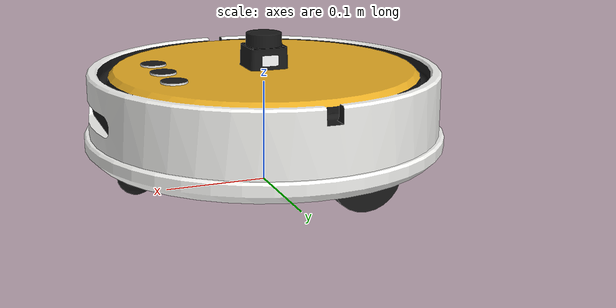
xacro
<?xml version="1.0"?>
<robot name="vacuum_robot" xmlns:xacro="http://www.ros.org/wiki/xacro">

  <xacro:property name="base_radius" value="0.16"/>
  <xacro:property name="base_height" value="0.08"/>

  <xacro:property name="wheel_radius" value="0.035"/>
  <xacro:property name="wheel_width"  value="0.02"/>
  <xacro:property name="wheel_separation" value="0.22"/>
  <xacro:property name="wheel_x" value="-0.055"/>
  <xacro:property name="wheel_z" value="${wheel_radius}"/>

  <xacro:property name="caster_radius" value="0.018"/>

  <xacro:property name="turret_length" value="0.03"/>
  <xacro:property name="turret_radius" value="0.035"/>

  <material name="gray"><color rgba="0.6 0.6 0.6 1"/></material>
  <material name="black"><color rgba="0.1 0.1 0.1 1"/></material>

  <link name="base_link">
    <visual>
      <origin xyz="0 0 0" rpy="0 0 0"/>
      <geometry>
        <mesh filename="package://vacuum_robot_description/meshes/own_vacuum.dae" scale="0.01 0.01 0.01"/>
      </geometry>
    </visual>

    <collision>
      <origin xyz="0 0 ${wheel_radius + base_height/2}" rpy="0 0 0"/>
      <geometry>
        <cylinder radius="${base_radius}" length="${base_height}"/>
      </geometry>
    </collision>

    <inertial>
      <mass value="5.0"/>
      <origin xyz="0 0 ${wheel_radius + base_height/2}" rpy="0 0 0"/>
      <inertia ixx="0.08" ixy="0.0" ixz="0.0" iyy="0.08" iyz="0.0" izz="0.08"/>
    </inertial>
  </link>

  <link name="left_wheel_link">
    <visual>
      <origin xyz="0 0 0" rpy="1.5708 0 0"/>
      <geometry>
        <cylinder radius="${wheel_radius}" length="${wheel_width}"/>
      </geometry>
      <material name="black"/>
    </visual>

    <collision>
      <origin xyz="0 0 0" rpy="1.5708 0 0"/>
      <geometry>
        <cylinder radius="${wheel_radius}" length="${wheel_width}"/>
      </geometry>
    </collision>

    <inertial>
      <mass value="0.3"/>
      <origin xyz="0 0 0" rpy="0 0 0"/>
      <inertia ixx="0.0005" ixy="0" ixz="0" iyy="0.0005" iyz="0" izz="0.0005"/>
    </inertial>
  </link>

  <joint name="left_wheel_joint" type="continuous">
    <parent link="base_link"/>
    <child link="left_wheel_link"/>
    <origin xyz="${wheel_x} ${wheel_separation/2} ${wheel_z}" rpy="0 0 0"/>
    <axis xyz="0 1 0"/>
  </joint>

  <gazebo reference="left_wheel_link">
    <mu1>0.2</mu1>
    <mu2>0.2</mu2>
    <kp>1000000.0</kp>
    <kd>100.0</kd>
    <material>Gazebo/Black</material>
  </gazebo>

  <link name="right_wheel_link">
    <visual>
      <origin xyz="0 0 0" rpy="1.5708 0 0"/>
      <geometry>
        <cylinder radius="${wheel_radius}" length="${wheel_width}"/>
      </geometry>
      <material name="black"/>
    </visual>

    <collision>
      <origin xyz="0 0 0" rpy="1.5708 0 0"/>
      <geometry>
        <cylinder radius="${wheel_radius}" length="${wheel_width}"/>
      </geometry>
    </collision>

    <inertial>
      <mass value="0.3"/>
      <origin xyz="0 0 0" rpy="0 0 0"/>
      <inertia ixx="0.0005" ixy="0" ixz="0" iyy="0.0005" iyz="0" izz="0.0005"/>
    </inertial>
  </link>

  <joint name="right_wheel_joint" type="continuous">
    <parent link="base_link"/>
    <child link="right_wheel_link"/>
    <origin xyz="${wheel_x} -${wheel_separation/2} ${wheel_z}" rpy="0 0 0"/>
    <axis xyz="0 1 0"/>
  </joint>

  <gazebo reference="right_wheel_link">
    <mu1>0.2</mu1>
    <mu2>0.2</mu2>
    <kp>1000000.0</kp>
    <kd>100.0</kd>
    <material>Gazebo/Black</material>
  </gazebo>

  <link name="caster_link">
    <visual>
      <origin xyz="0 0 0" rpy="0 0 0"/>
      <geometry>
        <sphere radius="${caster_radius}"/>
      </geometry>
    </visual>

    <collision>
      <origin xyz="0 0 0" rpy="0 0 0"/>
      <geometry>
        <sphere radius="${caster_radius}"/>
      </geometry>
    </collision>

    <inertial>
      <mass value="0.05"/>
      <origin xyz="0 0 0" rpy="0 0 0"/>
      <inertia ixx="0.00001" ixy="0" ixz="0" iyy="0.00001" iyz="0" izz="0.00001"/>
    </inertial>
  </link>

  <gazebo reference="caster_link">
  <material>Gazebo/Black</material>
  </gazebo>

  <joint name="caster_joint" type="fixed">
    <parent link="base_link"/>
    <child link="caster_link"/>
    <origin xyz="${base_radius - 0.03} 0 ${caster_radius}" rpy="0 0 0"/>
  </joint>

  <gazebo reference="caster_link">
    <mu1>0.3</mu1>
    <mu2>0.3</mu2>
  </gazebo>

  <link name="lidar_turret_link">
    <visual>
      <origin xyz="0 0 0" rpy="0 0 0"/>
      <geometry>
        <mesh filename="package://vacuum_robot_description/meshes/lidar.dae" scale="0.01 0.01 0.01"/>
      </geometry>
    </visual>

    <collision>
      <origin xyz="0 0 ${turret_length/2}" rpy="0 0 0"/>
      <geometry>
        <cylinder radius="${turret_radius}" length="${turret_length}"/>
      </geometry>
    </collision>

    <inertial>
      <mass value="0.1"/>
      <origin xyz="0 0 ${turret_length/2}" rpy="0 0 0"/>
      <inertia ixx="0.0001" ixy="0" ixz="0" iyy="0.0001" iyz="0" izz="0.0001"/>
    </inertial>
  </link>

  <joint name="lidar_turret_joint" type="fixed">
    <parent link="base_link"/>
    <child link="lidar_turret_link"/>
    <origin xyz="0 0 ${wheel_radius + base_height}" rpy="0 0 0"/>
  </joint>

  <link name="laser_link"/>

  <joint name="laser_joint" type="fixed">
    <parent link="lidar_turret_link"/>
    <child link="laser_link"/>
    <origin xyz="0 0 ${turret_length - 0.005}" rpy="0 0 0"/>
  </joint>

  <gazebo reference="laser_link">
    <sensor type="ray" name="lidar_sensor">
      <pose>0 0 0 0 0 0</pose>
      <visualize>true</visualize>
      <update_rate>10</update_rate>

      <ray>
        <scan>
          <horizontal>
            <samples>720</samples>
            <resolution>1</resolution>
            <min_angle>-3.14159</min_angle>
            <max_angle>3.14159</max_angle>
          </horizontal>
        </scan>
        <range>
          <min>0.05</min>
          <max>8.0</max>
          <resolution>0.01</resolution>
        </range>
      </ray>

      <plugin name="gazebo_ros_laser" filename="libgazebo_ros_laser.so">
        <topicName>scan</topicName>
        <frameName>laser_link</frameName>
      </plugin>
    </sensor>
  </gazebo>

  <gazebo>
    <plugin name="diff_drive" filename="libgazebo_ros_diff_drive.so">
      <leftJoint>left_wheel_joint</leftJoint>
      <rightJoint>right_wheel_joint</rightJoint>
      <wheelSeparation>${wheel_separation}</wheelSeparation>
      <wheelDiameter>${2*wheel_radius}</wheelDiameter>
      <torque>20</torque>
      <velocityLimit>2.0</velocityLimit>
      <updateRate>50</updateRate>
      <commandTopic>cmd_vel</commandTopic>
      <odometryTopic>odom</odometryTopic>
      <odometryFrame>odom</odometryFrame>
      <robotBaseFrame>base_link</robotBaseFrame>
      <publishWheelTF>false</publishWheelTF>
      <publishWheelJointState>false</publishWheelJointState>
      <publishTf>true</publishTf>
    </plugin>
  </gazebo>

</robot>
